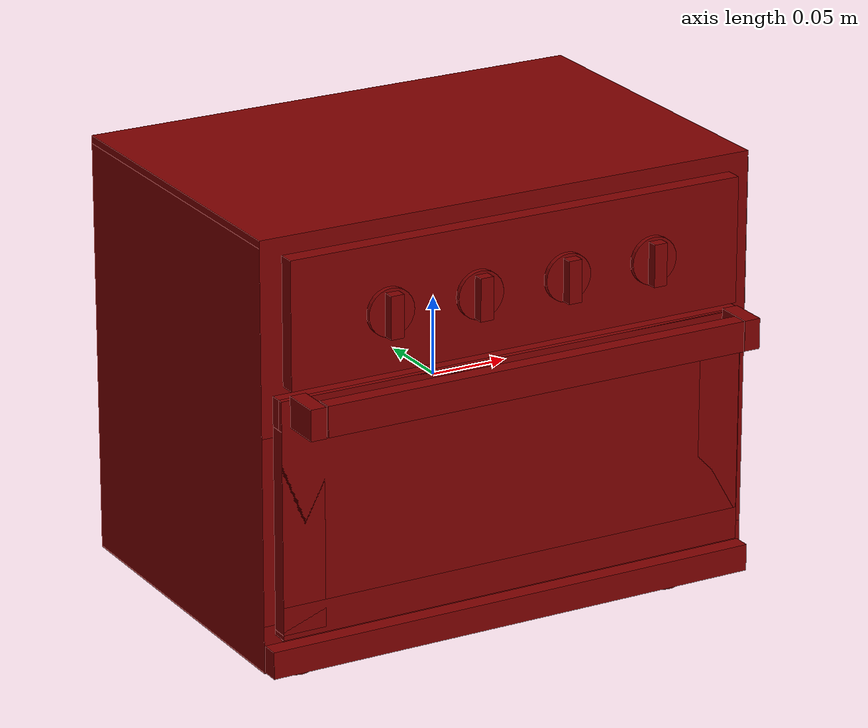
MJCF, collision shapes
<?xml version='1.0' encoding='UTF-8'?>
<mujoco model="model">
  <option timestep="0.002" gravity="0.0 0.0 -9.81"/>
  <compiler angle="radian"/>
  <asset>
    <mesh file="visuals/door.obj" name="door_vis"/>
    <mesh file="visuals/knob_doneness.obj" name="knob_doneness_vis"/>
    <mesh file="visuals/knob_function.obj" name="knob_function_vis"/>
    <mesh file="visuals/knob_temp.obj" name="knob_temp_vis"/>
    <mesh file="visuals/knob_time.obj" name="knob_time_vis"/>
    <mesh file="visuals/rack0.obj" name="rack0_vis"/>
    <mesh file="visuals/Body001.obj" name="Body001_vis"/>
    <mesh file="visuals/window.obj" name="window_vis"/>
    <texture file="visuals/T_BC001.png" name="Body001_material" type="2d"/>
    <material name="Body001_material" rgba="1 1 1 1.0" texture="Body001_material" shininess="0.2512328028678894" specular="0.5"/>
    <texture file="visuals/T_BC001.png" name="door_material" type="2d"/>
    <material name="door_material" rgba="1 1 1 1.0" texture="door_material" shininess="0.2512328028678894" specular="0.5"/>
    <texture file="visuals/T_BC001.png" name="window_material" type="2d"/>
    <material name="window_material" rgba="1 1 1 0.800000011920929" texture="window_material" shininess="0.2512328028678894" specular="0.3103448502657381"/>
    <texture file="visuals/T_BC001.png" name="knob_doneness_material" type="2d"/>
    <material name="knob_doneness_material" rgba="1 1 1 1.0" texture="knob_doneness_material" shininess="0.2512328028678894" specular="0.3103448502657381"/>
    <texture file="visuals/T_BC001.png" name="knob_function_material" type="2d"/>
    <material name="knob_function_material" rgba="1 1 1 1.0" texture="knob_function_material" shininess="0.2512328028678894" specular="0.3103448502657381"/>
    <texture file="visuals/T_BC001.png" name="knob_temp_material" type="2d"/>
    <material name="knob_temp_material" rgba="1 1 1 1.0" texture="knob_temp_material" shininess="0.2512328028678894" specular="0.3103448502657381"/>
    <texture file="visuals/T_BC001.png" name="knob_time_material" type="2d"/>
    <material name="knob_time_material" rgba="1 1 1 1.0" texture="knob_time_material" shininess="0.2512328028678894" specular="0.3103448502657381"/>
    <texture file="visuals/T_BC001.png" name="rack0_material" type="2d"/>
    <material name="rack0_material" rgba="1 1 1 1.0" texture="rack0_material" shininess="0.141421377658844" specular="5"/>
  </asset>
  <default>
    <default class="visual">
      <geom conaffinity="0" contype="0" group="1" type="mesh"/>
    </default>
    <default class="collision">
      <geom group="0" rgba="0.5 0 0 0.5"/>
    </default>
    <default class="spawn">
      <geom group="0" rgba="1 1 1 0.5" contype="0" conaffinity="0"/>
      <site group="0" rgba="1 1 1 0.5"/>
    </default>
    <default class="region">
      <geom group="1" conaffinity="0" contype="0" rgba="0 1 0 0"/>
    </default>
  </default>
  <worldbody>
    <body>
      <body name="object">
        <geom mesh="Body001_vis" type="mesh" solimp="0.998 0.998 0.001" solref="0.001 1" friction="0.95 0.3 0.1" class="visual" material="Body001_material"/>
        <geom class="collision" type="box" pos="-0.14384970 0.01806410 0.00575145" size="0.021892467513680458 0.10961189866065979 0.13251899182796478" quat="1.0 0.0 0.0 0.0"/>
        <geom class="collision" type="box" pos="-0.00000005 0.01806403 -0.11228935" size="0.1657390296459198 0.10961207747459412 0.015027121640741825" quat="1.0 0.0 0.0 0.0"/>
        <geom class="collision" type="box" pos="0.14385003 0.01809291 0.00635892" size="0.021892113611102104 0.10958168655633926 0.13251946866512299" quat="1.0 0.0 0.0 0.0"/>
        <geom class="collision" type="box" pos="-0.00016390 0.01806313 0.08223901" size="0.16557534039020538 0.10961160063743591 0.060967203229665756" quat="1.0 0.0 0.0 0.0"/>
        <geom class="collision" type="box" pos="-0.00015167 -0.09759170 0.09214653" size="0.1517123579978943 0.0053787510842084885 0.040148694068193436" quat="1.0 0.0 0.0 0.0"/>
        <geom class="collision" type="cylinder" pos="0.12863237 -0.06223436 -0.13526306" size="0.009940076619386673 0.007945614866912365" quat="7.549790126404332e-08 -1.0 0.0 0.0"/>
        <geom class="collision" type="cylinder" pos="-0.12975863 -0.06223436 -0.13526306" size="0.009940076619386673 0.007945614866912365" quat="7.549790126404332e-08 -1.0 0.0 0.0"/>
        <geom class="collision" type="cylinder" pos="0.12863237 0.09466845 -0.13526306" size="0.009940076619386673 0.007945614866912365" quat="7.549790126404332e-08 -1.0 0.0 0.0"/>
        <geom class="collision" type="cylinder" pos="-0.12975863 0.09466845 -0.13526306" size="0.009940076619386673 0.007945614866912365" quat="7.549790126404332e-08 -1.0 0.0 0.0"/>
        <geom class="collision" type="box" pos="0.00120360 0.07685552 -0.03956271" size="0.1254693567752838 0.050822723656892776 0.06082941219210625" quat="1.0 0.0 0.0 0.0"/>
        <geom class="collision" type="box" pos="-0.12302516 -0.03077261 -0.04503537" size="0.004926081281155348 0.042049676179885864 0.01603158749639988" quat="1.0 0.0 0.0 0.0"/>
        <geom class="collision" type="box" pos="-0.12302516 -0.03077261 -0.07507122" size="0.004926081281155348 0.042049676179885864 0.007960397750139236" quat="1.0 0.0 0.0 0.0"/>
        <geom class="collision" type="box" pos="-0.12302516 -0.02339957 0.01227983" size="0.004926081281155348 0.049422718584537506 0.006165614817291498" quat="1.0 0.0 0.0 0.0"/>
        <geom class="collision" type="box" pos="-0.12302516 0.01951633 -0.00799675" size="0.004926078952848911 0.006506818812340498 0.016109801828861237" quat="1.0 0.0 0.0 0.0"/>
        <geom class="collision" type="box" pos="0.12390774 -0.01207612 -0.01267803" size="0.004926078952848911 0.012758263386785984 0.009307733736932278" quat="1.0 0.0 0.0 0.0"/>
        <geom class="collision" type="box" pos="0.12394489 0.01951633 -0.00799675" size="0.004926078952848911 0.006506823934614658 0.016109803691506386" quat="1.0 0.0 0.0 0.0"/>
        <geom class="collision" type="box" pos="0.12394489 -0.02339957 0.01227983" size="0.004926081281155348 0.049422718584537506 0.006165631115436554" quat="1.0 0.0 0.0 0.0"/>
        <geom class="collision" type="box" pos="0.12286151 -0.03077261 -0.07507122" size="0.004926081281155348 0.04204967990517616 0.007960411719977856" quat="1.0 0.0 0.0 0.0"/>
        <geom class="collision" type="box" pos="-0.12302516 -0.01207612 -0.01267803" size="0.004926078952848911 0.01275826059281826 0.00930773001164198" quat="1.0 0.0 0.0 0.0"/>
        <geom class="collision" type="box" pos="0.12301072 -0.03077261 -0.04503537" size="0.004926081281155348 0.04204967990517616 0.016031600534915924" quat="1.0 0.0 0.0 0.0"/>
        <geom class="collision" type="box" pos="-0.00052856 0.00686557 -0.11801764" size="0.16464251279830933 0.1096147745847702 0.00862452294677496" quat="1.0 0.0 0.0 0.0"/>
        <body name="door">
          <joint axis="1.0 0.0 0.0" pos="0.00000023 -0.10259805 -0.10788514" limited="true" name="door_joint" range="0.0 1.5707963267948966" type="hinge" damping="1" frictionloss="1" armature=".01" stiffness="0.05"/>
          <geom mesh="door_vis" type="mesh" solimp="0.998 0.998 0.001" solref="0.001 1" friction="0.95 0.3 0.1" class="visual" material="door_material"/>
          <geom class="collision" type="box" pos="-0.00160570 -0.09759170 0.03688635" size="0.1570468246936798 0.005378819070756435 0.010370129719376564" quat="1.0 0.0 0.0 0.0"/>
          <geom class="collision" type="box" pos="-0.14461967 -0.09759170 -0.03575443" size="0.014037130400538445 0.005378827918320894 0.06419248133897781" quat="1.0 0.0 0.0 0.0"/>
          <geom class="collision" type="box" pos="0.14100505 -0.09759170 -0.03575443" size="0.014037162065505981 0.005378835368901491 0.06419260054826736" quat="1.0 0.0 0.0 0.0"/>
          <geom class="collision" type="box" pos="0.14744768 -0.11557846 0.04020564" size="0.005300507415086031 0.012701136991381645 0.009724574163556099" quat="1.0 0.0 0.0 0.0"/>
          <geom class="collision" type="box" pos="-0.14778328 -0.11563839 0.04009482" size="0.005140730645507574 0.012761094607412815 0.009747170843183994" quat="1.0 0.0 0.0 0.0"/>
          <geom class="collision" type="box" pos="-0.00160570 -0.09759170 -0.09276982" size="0.1570497453212738 0.005378910340368748 0.010370312258601189" quat="1.0 0.0 0.0 0.0"/>
          <geom class="collision" type="box" pos="-0.00160570 -0.10123054 -0.02821571" size="0.15704865753650665 0.0017400409560650587 0.07547225803136826" quat="1.0 0.0 0.0 0.0" name="door_main"/>
          <geom class="collision" type="box" pos="0.00000385 -0.12317576 0.04020564" size="0.14150260388851166 0.005103878676891327 0.009724589064717293" quat="1.0 0.0 0.0 0.0" name="door_handle_main"/>
          <body name="window">
            <geom mesh="window_vis" type="mesh" solimp="0.998 0.998 0.001" solref="0.001 1" friction="0.95 0.3 0.1" class="visual" material="window_material"/>
            <geom class="collision" type="box" pos="-0.00053016 -0.09459904 -0.03132229" size="0.1300632357597351 0.0015163501957431436 0.059017691761255264" quat="1.0 0.0 0.0 0.0"/>
          </body>
        </body>
        <body name="knob_doneness">
          <joint axis="0.0 1.0 0.0" pos="0.08784427 -0.11321857 0.09276430" limited="true" name="knob_doneness_joint" range="0.0 4.71238898038469" type="hinge" damping="0.05" armature="1" frictionloss="0.75"/>
          <geom mesh="knob_doneness_vis" type="mesh" solimp="0.998 0.998 0.001" solref="0.001 1" friction="0.95 0.3 0.1" class="visual" material="knob_doneness_material"/>
          <geom class="collision" type="cylinder" pos="0.08783818 -0.11013374 0.09272636" size="0.015111498534679413 0.0016196591313928366" quat="0.7071067094802856 0.70710688829422 0.0 0.0" friction="100 0.5 0.01"/>
          <geom class="collision" type="box" pos="0.08777113 -0.11526523 0.09214580" size="0.004297190345823765 0.003512029070407152 0.013432742096483707" quat="1.0 0.0 0.0 0.0" name="knob_doneness_main" friction="100 0.5 0.01"/>
        </body>
        <body name="knob_function">
          <joint axis="0.0 1.0 0.0" pos="0.02852556 -0.11321857 0.09276430" limited="true" name="knob_function_joint" range="0.0 3.141592653589793" type="hinge" damping="0.05" armature="1" frictionloss="0.75"/>
          <geom mesh="knob_function_vis" type="mesh" solimp="0.998 0.998 0.001" solref="0.001 1" friction="0.95 0.3 0.1" class="visual" material="knob_function_material"/>
          <geom class="collision" type="cylinder" pos="0.02836811 -0.11013374 0.09272636" size="0.015111498534679413 0.0016196591313928366" quat="0.7071067094802856 0.70710688829422 0.0 0.0" friction="100 0.5 0.01"/>
          <geom class="collision" type="box" pos="0.02884178 -0.11526523 0.09221374" size="0.004297186620533466 0.003512021852657199 0.013432711362838745" quat="1.0 0.0 0.0 0.0" name="knob_function_main" friction="100 0.5 0.01"/>
        </body>
        <body name="knob_temp">
          <joint axis="0.0 1.0 0.0" pos="-0.03098843 -0.11321857 0.09276430" limited="true" name="knob_temp_joint" range="0.0 3.5779249665883754" type="hinge" damping="0.05" armature="1" frictionloss="0.75"/>
          <geom mesh="knob_temp_vis" type="mesh" solimp="0.998 0.998 0.001" solref="0.001 1" friction="0.95 0.3 0.1" class="visual" material="knob_temp_material"/>
          <geom class="collision" type="cylinder" pos="-0.03094646 -0.11013374 0.09254301" size="0.015111498534679413 0.0016196591313928366" quat="0.7071067094802856 0.70710688829422 0.0 0.0" friction="100 0.5 0.01"/>
          <geom class="collision" type="box" pos="-0.03107433 -0.11526523 0.09218863" size="0.004297178704291582 0.003512013703584671 0.013432678766548634" quat="1.0 0.0 0.0 0.0" name="knob_temp_main" friction="100 0.5 0.01"/>
        </body>
        <body name="knob_time">
          <joint axis="0.0 1.0 0.0" pos="-0.09053220 -0.11321857 0.09276430" limited="true" name="knob_time_joint" range="0.0 5.235987755982989" type="hinge" damping="0.05" armature="1" frictionloss="0.75"/>
          <geom mesh="knob_time_vis" type="mesh" solimp="0.998 0.998 0.001" solref="0.001 1" friction="0.95 0.3 0.1" class="visual" material="knob_time_material"/>
          <geom class="collision" type="cylinder" pos="-0.09055644 -0.11013374 0.09254301" size="0.015111498534679413 0.0016196591313928366" quat="0.7071067094802856 0.70710688829422 0.0 0.0" friction="100 0.5 0.01"/>
          <geom class="collision" type="box" pos="-0.09062349 -0.11526523 0.09196245" size="0.004297166131436825 0.003512004856020212 0.013432645238935947" quat="1.0 0.0 0.0 0.0" name="knob_time_main" friction="100 0.5 0.01"/>
        </body>
        <body name="rack0">
          <geom class="region" name="reg_rack0" type="box" pos="0.00048040499999999625 -0.025675709999999997 -0.007852079999999999" size="0.093428325 0.04437897 0.02674369"/>
          <joint axis="0.0 -1.0 0.0" pos="0.00030020 -0.00593611 -0.03185891" limited="true" name="rack0_joint" range="0.02 0.15" type="slide" damping="1" frictionloss="1" armature=".01" stiffness="0.05"/>
          <geom mesh="rack0_vis" type="mesh" solimp="0.998 0.998 0.001" solref="0.001 1" friction="0.95 0.3 0.1" class="visual" material="rack0_material"/>
          <geom class="collision" type="box" pos="0.00057734 -0.02559394 -0.03631821" size="0.09562108665704727 0.046136803925037384 0.001950536505319178" quat="1.0 0.0 0.0 0.0"/>
          <geom class="collision" type="box" pos="0.11378317 -0.02559394 -0.02692596" size="0.006737360265105963 0.046136803925037384 0.001950536505319178" quat="1.0 0.0 0.0 0.0"/>
          <geom class="collision" type="box" pos="0.10123889 -0.02559394 -0.03168534" size="0.008415200747549534 0.046136803925037384 0.001950536505319178" quat="0.9429240226745605 0.0 -0.33300796151161194 0.0"/>
          <geom class="collision" type="box" pos="-0.10104806 -0.02559394 -0.03168534" size="0.008415201678872108 0.046136803925037384 0.0019505366217345" quat="1.8359408215928852e-07 0.9429240226745605 6.48390425794787e-08 -0.33300793170928955"/>
          <geom class="collision" type="box" pos="-0.11359234 -0.02559394 -0.02692596" size="0.006737360265105963 0.046136803925037384 0.0019505515228956938" quat="1.0 0.0 0.0 0.0"/>
        </body>
        <geom class="region" name="reg_main" type="box" pos="-4.999999997368221e-09 0.009227715000000004 0.0" size="0.170784445 0.11945197500000002 0.1442087"/>
      </body>
    </body>
  </worldbody>
  <actuator>
    <motor name="door_joint_actuator" joint="door_joint" gear="50"/>
    <motor name="knob_doneness_joint_actuator" joint="knob_doneness_joint" gear="50"/>
    <motor name="knob_function_joint_actuator" joint="knob_function_joint" gear="50"/>
    <motor name="knob_temp_joint_actuator" joint="knob_temp_joint" gear="50"/>
    <motor name="knob_time_joint_actuator" joint="knob_time_joint" gear="50"/>
    <motor name="rack0_joint_actuator" joint="rack0_joint" gear="50"/>
  </actuator>
</mujoco>
